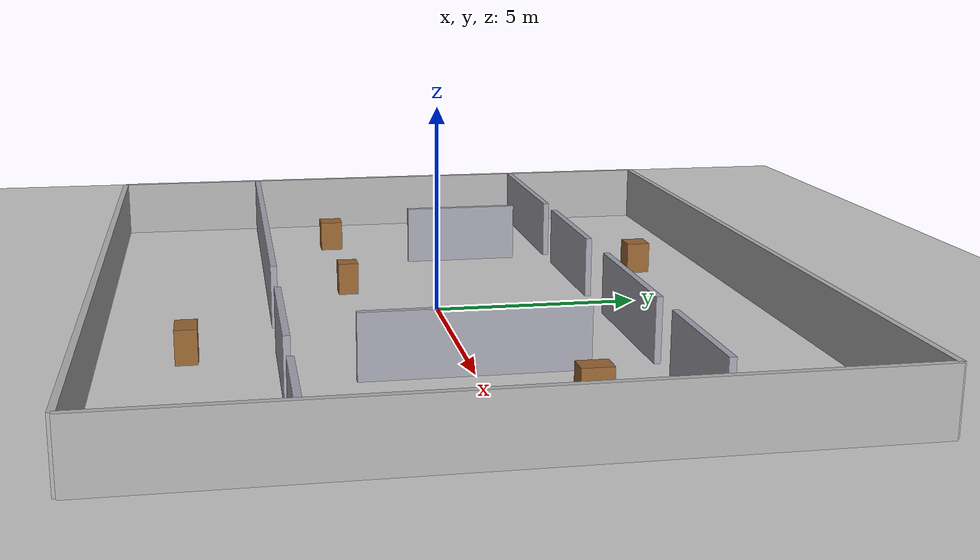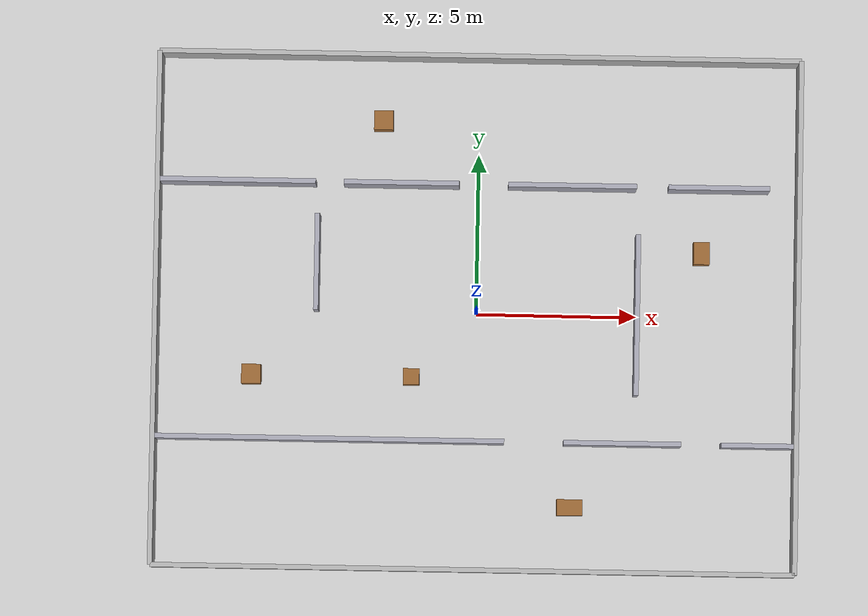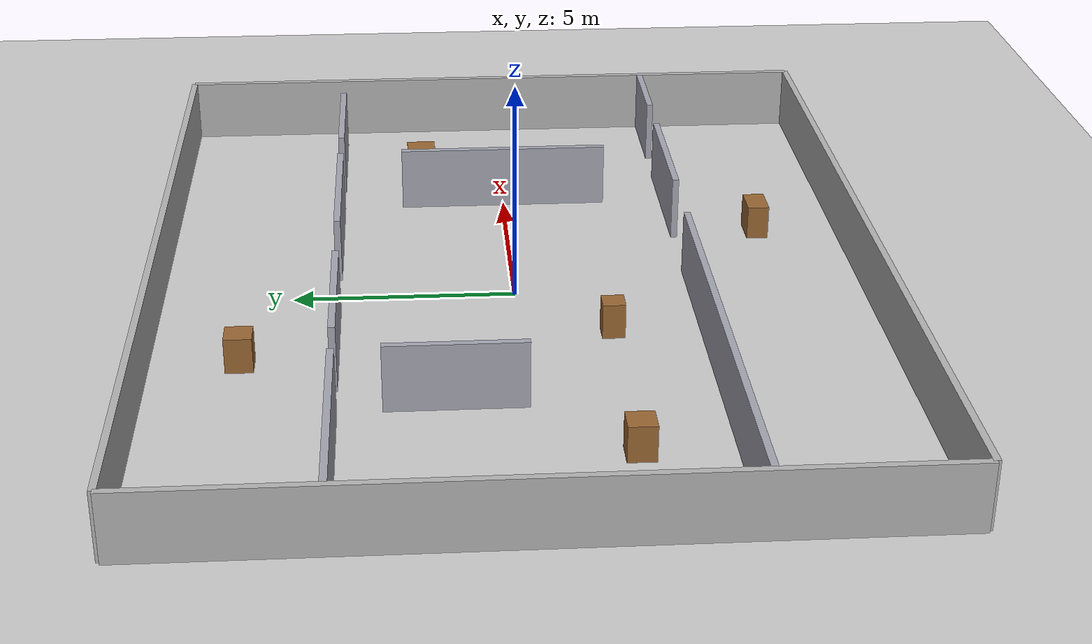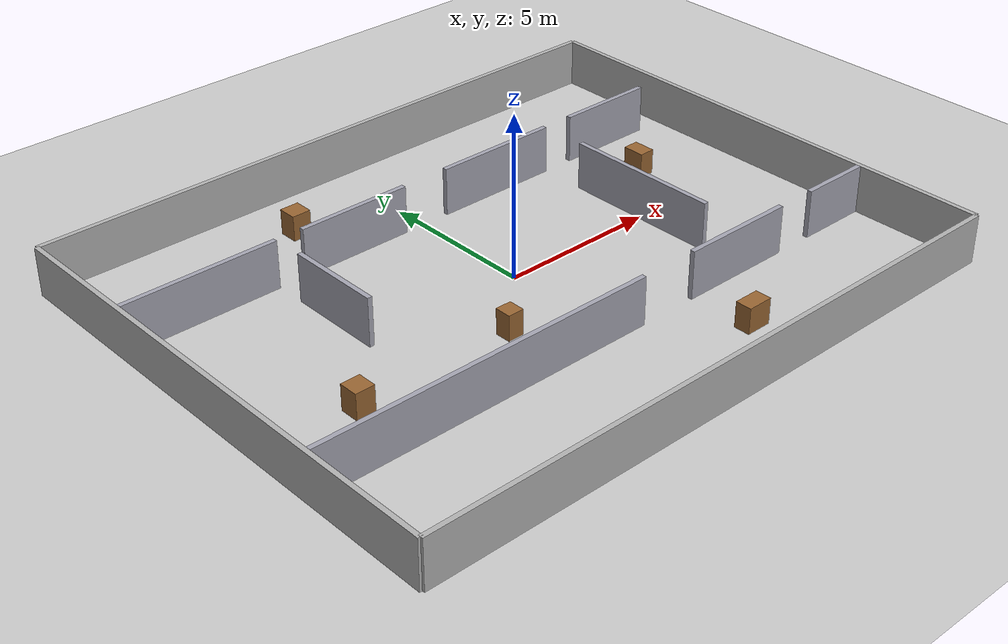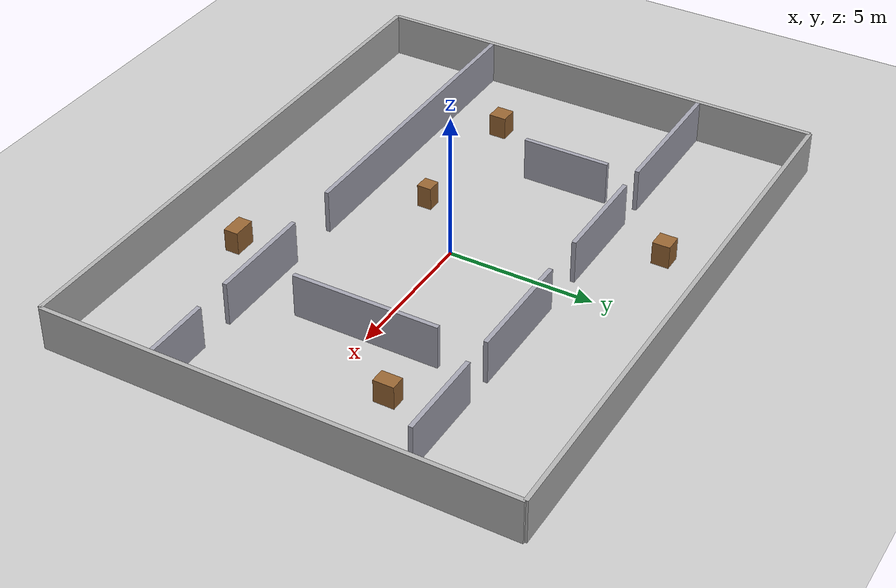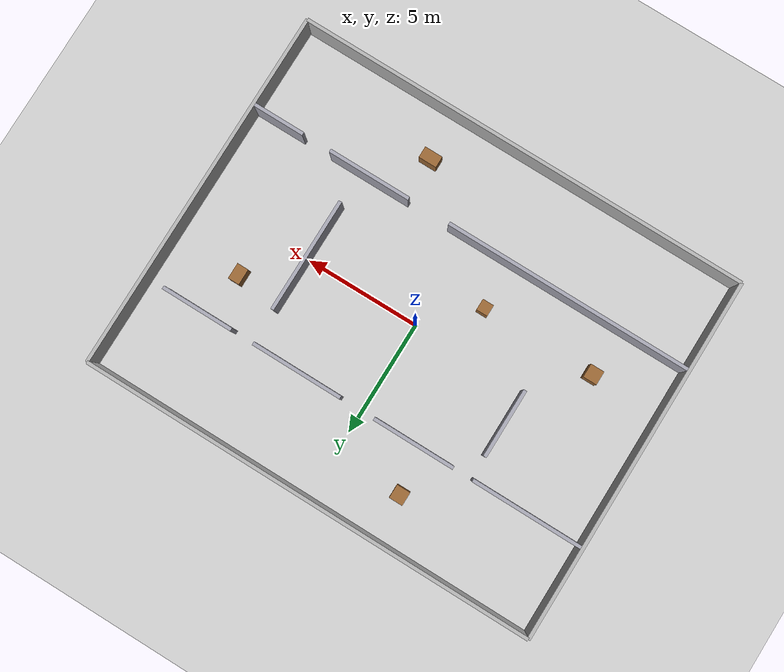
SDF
<?xml version="1.0"?>
<sdf version="1.6">
  <world name="harsh_corridors">

    <physics type="ode">
      <real_time_update_rate>1000.0</real_time_update_rate>
      <max_step_size>0.001</max_step_size>
      <real_time_factor>1</real_time_factor>
    </physics>

    <include><uri>model://sun</uri></include>
    <include><uri>model://ground_plane</uri></include>

    <!-- ====== Outer Walls (20m x 16m) ====== -->
    <model name="wall_n"><static>true</static><pose>0 8.0 0.75 0 0 0</pose><link name="l"><collision name="c"><geometry><box><size>20.0 0.15 1.5</size></box></geometry></collision><visual name="v"><geometry><box><size>20.0 0.15 1.5</size></box></geometry><material><ambient>0.7 0.7 0.7 1</ambient></material></visual></link></model>
    <model name="wall_s"><static>true</static><pose>0 -8.0 0.75 0 0 0</pose><link name="l"><collision name="c"><geometry><box><size>20.0 0.15 1.5</size></box></geometry></collision><visual name="v"><geometry><box><size>20.0 0.15 1.5</size></box></geometry><material><ambient>0.7 0.7 0.7 1</ambient></material></visual></link></model>
    <model name="wall_e"><static>true</static><pose>10.0 0 0.75 0 0 0</pose><link name="l"><collision name="c"><geometry><box><size>0.15 16.0 1.5</size></box></geometry></collision><visual name="v"><geometry><box><size>0.15 16.0 1.5</size></box></geometry><material><ambient>0.7 0.7 0.7 1</ambient></material></visual></link></model>
    <model name="wall_w"><static>true</static><pose>-10.0 0 0.75 0 0 0</pose><link name="l"><collision name="c"><geometry><box><size>0.15 16.0 1.5</size></box></geometry></collision><visual name="v"><geometry><box><size>0.15 16.0 1.5</size></box></geometry><material><ambient>0.7 0.7 0.7 1</ambient></material></visual></link></model>

    <!-- ====== Horizontal dividers creating corridors ====== -->

    <!-- North divider at y=4 (gap at x=[-0.425, 0.425] = 0.85m, and x=[-6.0, -4.8] = 1.2m) -->
    <model name="div_n_w"><static>true</static><pose>-7.5 4.0 0.75 0 0 0</pose><link name="l"><collision name="c"><geometry><box><size>4.85 0.15 1.5</size></box></geometry></collision><visual name="v"><geometry><box><size>4.85 0.15 1.5</size></box></geometry><material><ambient>0.65 0.65 0.7 1</ambient></material></visual></link></model>
    <model name="div_n_m1"><static>true</static><pose>-2.4 4.0 0.75 0 0 0</pose><link name="l"><collision name="c"><geometry><box><size>3.6 0.15 1.5</size></box></geometry></collision><visual name="v"><geometry><box><size>3.6 0.15 1.5</size></box></geometry><material><ambient>0.65 0.65 0.7 1</ambient></material></visual></link></model>
    <model name="div_n_m2"><static>true</static><pose>2.925 4.0 0.75 0 0 0</pose><link name="l"><collision name="c"><geometry><box><size>4.0 0.15 1.5</size></box></geometry></collision><visual name="v"><geometry><box><size>4.0 0.15 1.5</size></box></geometry><material><ambient>0.65 0.65 0.7 1</ambient></material></visual></link></model>
    <model name="div_n_e"><static>true</static><pose>7.5 4.0 0.75 0 0 0</pose><link name="l"><collision name="c"><geometry><box><size>3.15 0.15 1.5</size></box></geometry></collision><visual name="v"><geometry><box><size>3.15 0.15 1.5</size></box></geometry><material><ambient>0.65 0.65 0.7 1</ambient></material></visual></link></model>

    <!-- South divider at y=-4 (gap at x=[1.0, 2.2] = 1.2m, and x=[6.575, 7.425] = 0.85m) -->
    <model name="div_s_w"><static>true</static><pose>-4.5 -4.0 0.75 0 0 0</pose><link name="l"><collision name="c"><geometry><box><size>10.85 0.15 1.5</size></box></geometry></collision><visual name="v"><geometry><box><size>10.85 0.15 1.5</size></box></geometry><material><ambient>0.65 0.65 0.7 1</ambient></material></visual></link></model>
    <model name="div_s_m"><static>true</static><pose>4.6 -4.0 0.75 0 0 0</pose><link name="l"><collision name="c"><geometry><box><size>3.65 0.15 1.5</size></box></geometry></collision><visual name="v"><geometry><box><size>3.65 0.15 1.5</size></box></geometry><material><ambient>0.65 0.65 0.7 1</ambient></material></visual></link></model>
    <model name="div_s_e"><static>true</static><pose>8.8 -4.0 0.75 0 0 0</pose><link name="l"><collision name="c"><geometry><box><size>2.25 0.15 1.5</size></box></geometry></collision><visual name="v"><geometry><box><size>2.25 0.15 1.5</size></box></geometry><material><ambient>0.65 0.65 0.7 1</ambient></material></visual></link></model>

    <!-- Center vertical wall creating L-turn at x=5 -->
    <model name="vwall_center"><static>true</static><pose>5.0 0.0 0.75 0 0 0</pose><link name="l"><collision name="c"><geometry><box><size>0.15 5.0 1.5</size></box></geometry></collision><visual name="v"><geometry><box><size>0.15 5.0 1.5</size></box></geometry><material><ambient>0.65 0.65 0.7 1</ambient></material></visual></link></model>

    <!-- Dead-end wall at x=-5, y=0 to y=3 -->
    <model name="deadend"><static>true</static><pose>-5.0 1.5 0.75 0 0 0</pose><link name="l"><collision name="c"><geometry><box><size>0.15 3.0 1.5</size></box></geometry></collision><visual name="v"><geometry><box><size>0.15 3.0 1.5</size></box></geometry><material><ambient>0.65 0.65 0.7 1</ambient></material></visual></link></model>

    <!-- ====== Obstacles (boxes simulating pallets/equipment) ====== -->
    <model name="obs1"><static>true</static><pose>-3.0 6.0 0.4 0 0 0</pose><link name="l"><collision name="c"><geometry><box><size>0.6 0.6 0.8</size></box></geometry></collision><visual name="v"><geometry><box><size>0.6 0.6 0.8</size></box></geometry><material><ambient>0.6 0.4 0.2 1</ambient></material></visual></link></model>
    <model name="obs2"><static>true</static><pose>3.0 -6.0 0.4 0 0 0</pose><link name="l"><collision name="c"><geometry><box><size>0.8 0.5 0.8</size></box></geometry></collision><visual name="v"><geometry><box><size>0.8 0.5 0.8</size></box></geometry><material><ambient>0.6 0.4 0.2 1</ambient></material></visual></link></model>
    <model name="obs3"><static>true</static><pose>7.0 2.0 0.4 0 0 0</pose><link name="l"><collision name="c"><geometry><box><size>0.5 0.7 0.8</size></box></geometry></collision><visual name="v"><geometry><box><size>0.5 0.7 0.8</size></box></geometry><material><ambient>0.6 0.4 0.2 1</ambient></material></visual></link></model>
    <model name="obs4"><static>true</static><pose>-7.0 -2.0 0.4 0 0 0</pose><link name="l"><collision name="c"><geometry><box><size>0.6 0.6 0.8</size></box></geometry></collision><visual name="v"><geometry><box><size>0.6 0.6 0.8</size></box></geometry><material><ambient>0.6 0.4 0.2 1</ambient></material></visual></link></model>
    <model name="obs5"><static>true</static><pose>-2.0 -2.0 0.4 0 0 0</pose><link name="l"><collision name="c"><geometry><box><size>0.5 0.5 0.8</size></box></geometry></collision><visual name="v"><geometry><box><size>0.5 0.5 0.8</size></box></geometry><material><ambient>0.6 0.4 0.2 1</ambient></material></visual></link></model>

  </world>
</sdf>
